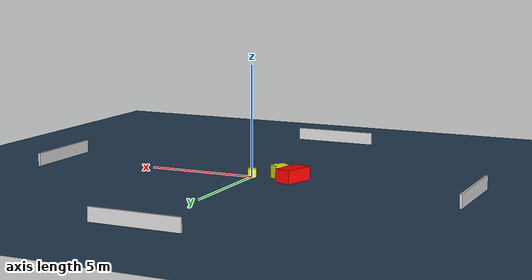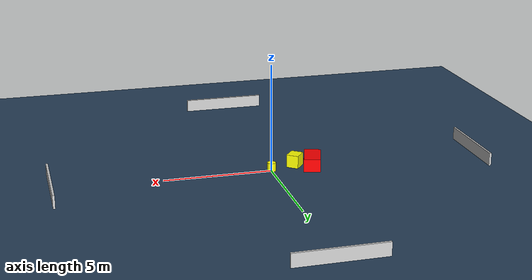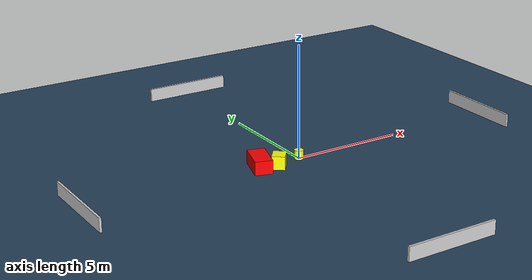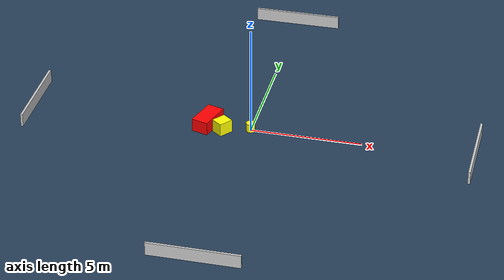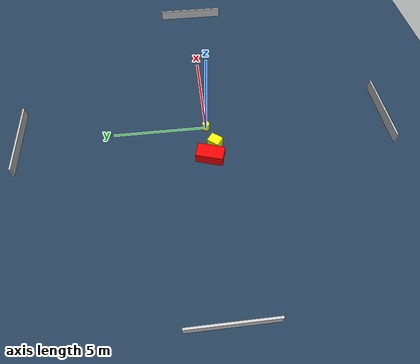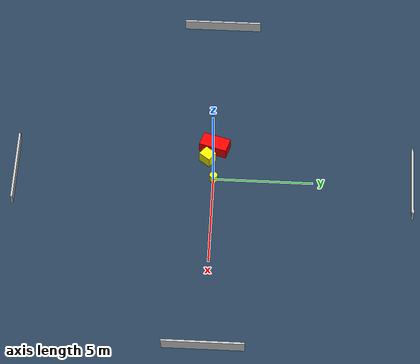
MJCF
<?xml version="1.0" ?>
<mujoco model="generated_environment">
  <option timestep="0.01" integrator="RK4" cone="elliptic"/>
  <default>
    <geom density="1"/>
  </default>
  <asset>
    <texture builtin="gradient" height="3072" name="skybox" rgb1="0.3 0.5 0.7" rgb2="0 0 0" type="skybox" width="512"/>
    <texture builtin="checker" height="300" name="groundplane" rgb1="0.2 0.3 0.4" rgb2="0.1 0.2 0.3" type="2d" width="300"/>
    <material name="groundplane" reflectance="0.2" texrepeat="5 5" texture="groundplane"/>
  </asset>
  <worldbody>
    <light dir="0 0 -1" directional="true" pos="0 0 1.5"/>
    <geom condim="3" friction="0.5 0.005 0.001" material="groundplane" name="floor" pos="0 0 0" size="0 0 0.05" type="plane"/>
    <body name="walls">
      <geom name="wall_1" condim="4" pos="-10.0 0.0 0.3" rgba="0.800000011920929 0.800000011920929 0.800000011920929 1.0" size="0.05 2.0 0.3" type="box"/>
      <geom name="wall_2" condim="4" pos="10.0 0.0 0.3" rgba="0.800000011920929 0.800000011920929 0.800000011920929 1.0" size="0.05 2.0 0.3" type="box"/>
      <geom name="wall_3" condim="4" pos="0.0 -10.0 0.3" rgba="0.800000011920929 0.800000011920929 0.800000011920929 1.0" size="2.0 0.05 0.3" type="box"/>
      <geom name="wall_4" condim="4" pos="0.0 10.0 0.3" rgba="0.800000011920929 0.800000011920929 0.800000011920929 1.0" size="2.0 0.05 0.3" type="box"/>
    </body>
    <body name="robot">
      <joint name="joint_x" type="slide" pos="0 0 0" axis="1 0 0"/>
      <joint name="joint_y" type="slide" pos="0 0 0" axis="0 1 0"/>
      <geom name="robot" type="cylinder" pos="0.0 0.0 0.2" size="0.2 0.2 0.0" mass="5.0" friction="1.0 0.005 0.0001" condim="4" rgba="1.0 1.0 0.0 1.0"/>
    </body>
    <body name="obstacle_1_movable">
      <geom name="obstacle_1_movable" condim="4" pos="-1.2133775950361299 -0.35297951361610774 0.3" euler="0 0 142.02859261536338" friction="0.0 0.005 0.001" rgba="1.0 1.0 0.0 1.0" size="0.28289719350503695 0.32629354135374555 0.3" type="box" mass="0.1"/>
      <joint type="free"/>
    </body>
    <body name="obstacle_2_static">
      <geom name="obstacle_2_static" condim="4" pos="-1.9570289816968909 -0.02442834815777232 0.3" euler="0 0 252.9851759162478" friction="0.0 0.005 0.001" rgba="1.0 0.0 0.0 1.0" size="0.7104242790825546 0.38569538909985257 0.3" type="box"/>
    </body>
  </worldbody>
  <actuator>
    <motor name="actuator_x" joint="joint_x" gear="1" ctrlrange="-1 1"/>
    <motor name="actuator_y" joint="joint_y" gear="1" ctrlrange="-1 1"/>
  </actuator>
</mujoco>
